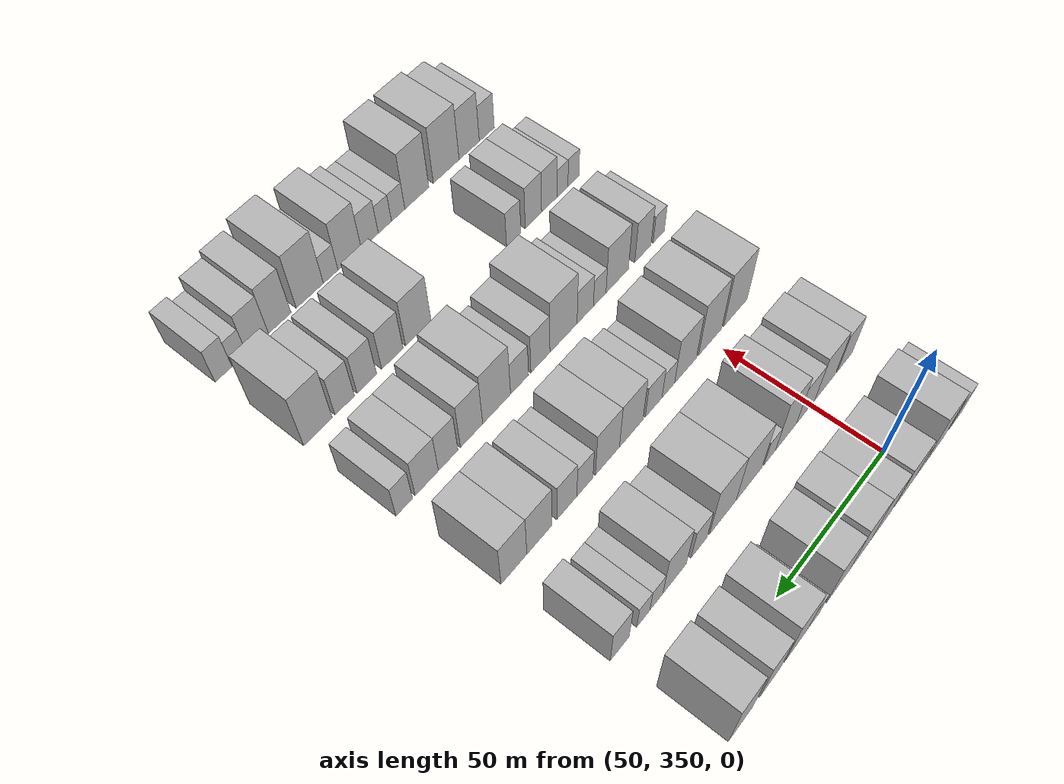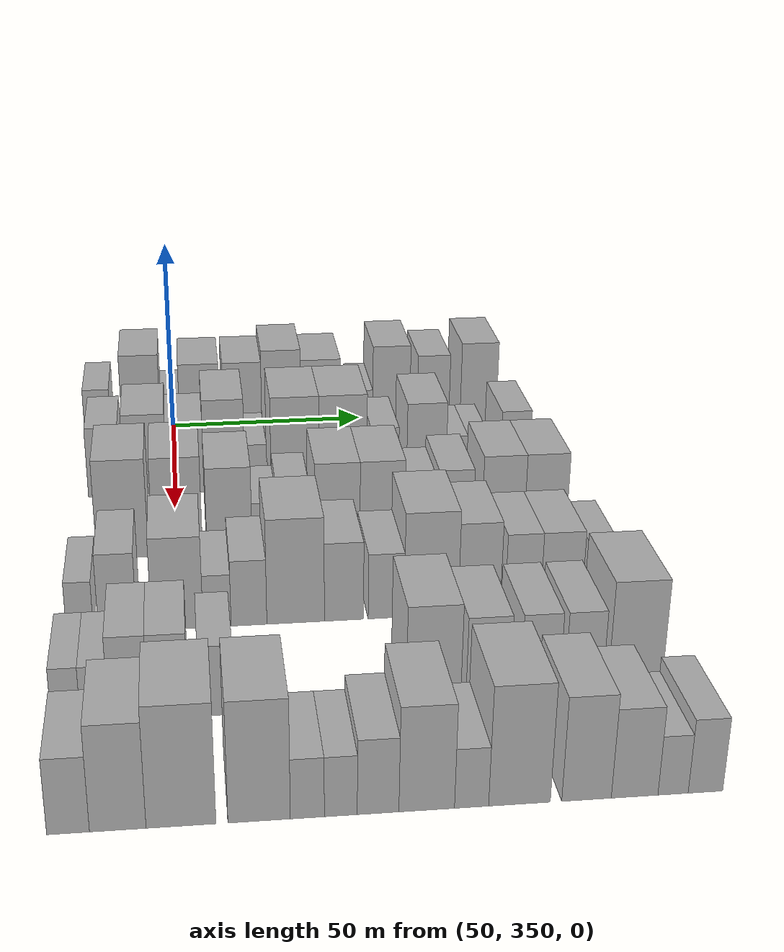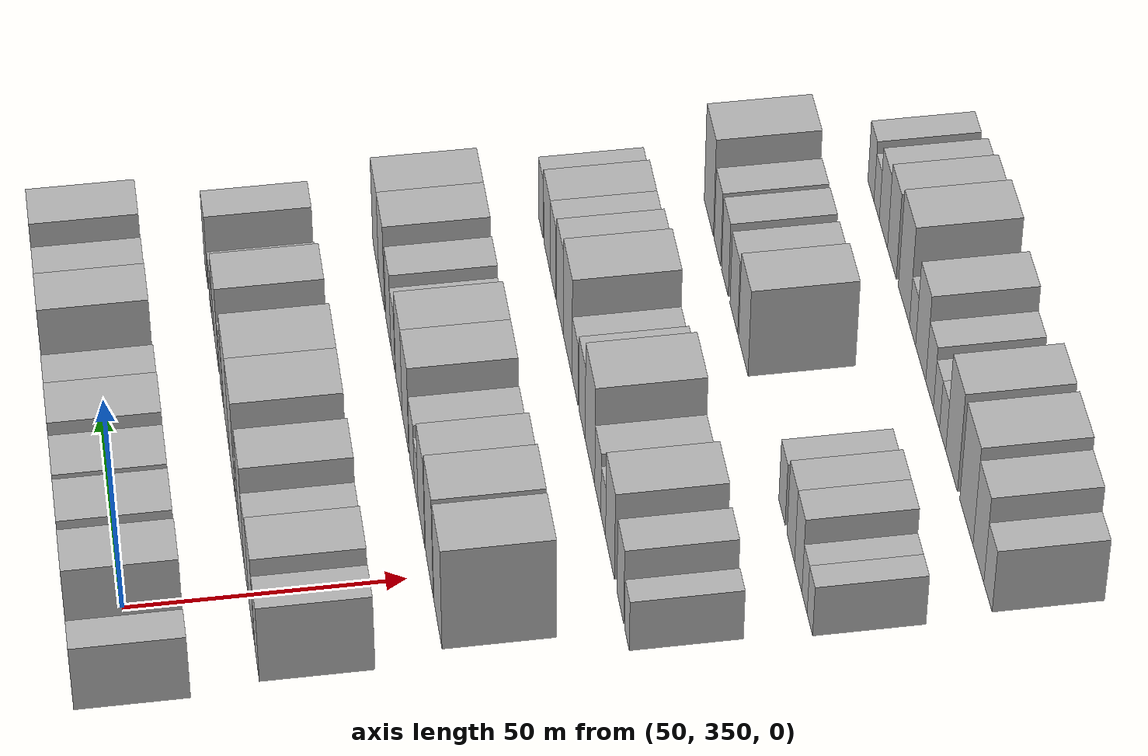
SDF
<sdf version="1.6">
 <world name="default">
  <model name="building_98">
   <static>1</static>
   <pose>50.0000 330.4746 0 0.000000 0.000000 0.000000</pose>
   <link name="link">
    <pose>0 0 7.50 0 0 0</pose>
    <collision name="collision"><geometry><box><size>20.0000 6.6870 15.0000</size></box></geometry></collision>
    <visual name="visual">
     <cast_shadows>0</cast_shadows>
     <geometry><box><size>20.0000 6.6870 15.0000</size></box></geometry>
     <material>
      <script>
       <uri>model://HANNAS_wall/materials/scripts</uri>
       <uri>model://HANNAS_wall/materials/textures</uri>
       <name>vrc/HANNAS_wall</name>
      </script>
     </material>
    </visual>
   </link>
  </model>
  <model name="building_99">
   <static>1</static>
   <pose>50.0000 341.7912 0 0.000000 0.000000 0.000000</pose>
   <link name="link">
    <pose>0 0 12.00 0 0 0</pose>
    <collision name="collision"><geometry><box><size>20.0000 9.9461 24.0000</size></box></geometry></collision>
    <visual name="visual">
     <cast_shadows>0</cast_shadows>
     <geometry><box><size>20.0000 9.9461 24.0000</size></box></geometry>
     <material>
      <script>
       <uri>model://HANNAS_wall/materials/scripts</uri>
       <uri>model://HANNAS_wall/materials/textures</uri>
       <name>vrc/HANNAS_wall</name>
      </script>
     </material>
    </visual>
   </link>
  </model>
  <model name="building_100">
   <static>1</static>
   <pose>50.0000 349.2575 0 0.000000 0.000000 0.000000</pose>
   <link name="link">
    <pose>0 0 6.00 0 0 0</pose>
    <collision name="collision"><geometry><box><size>20.0000 4.9865 12.0000</size></box></geometry></collision>
    <visual name="visual">
     <cast_shadows>0</cast_shadows>
     <geometry><box><size>20.0000 4.9865 12.0000</size></box></geometry>
     <material>
      <script>
       <uri>model://HANNAS_wall/materials/scripts</uri>
       <uri>model://HANNAS_wall/materials/textures</uri>
       <name>vrc/HANNAS_wall</name>
      </script>
     </material>
    </visual>
   </link>
  </model>
  <model name="building_101">
   <static>1</static>
   <pose>50.0000 356.9402 0 0.000000 0.000000 0.000000</pose>
   <link name="link">
    <pose>0 0 10.50 0 0 0</pose>
    <collision name="collision"><geometry><box><size>20.0000 10.3790 21.0000</size></box></geometry></collision>
    <visual name="visual">
     <cast_shadows>0</cast_shadows>
     <geometry><box><size>20.0000 10.3790 21.0000</size></box></geometry>
     <material>
      <script>
       <uri>model://HANNAS_wall/materials/scripts</uri>
       <uri>model://HANNAS_wall/materials/textures</uri>
       <name>vrc/HANNAS_wall</name>
      </script>
     </material>
    </visual>
   </link>
  </model>
  <model name="building_102">
   <static>1</static>
   <pose>50.0000 368.1233 0 0.000000 0.000000 0.000000</pose>
   <link name="link">
    <pose>0 0 10.50 0 0 0</pose>
    <collision name="collision"><geometry><box><size>20.0000 9.9872 21.0000</size></box></geometry></collision>
    <visual name="visual">
     <cast_shadows>0</cast_shadows>
     <geometry><box><size>20.0000 9.9872 21.0000</size></box></geometry>
     <material>
      <script>
       <uri>model://HANNAS_wall/materials/scripts</uri>
       <uri>model://HANNAS_wall/materials/textures</uri>
       <name>vrc/HANNAS_wall</name>
      </script>
     </material>
    </visual>
   </link>
  </model>
  <model name="building_103">
   <static>1</static>
   <pose>50.0000 378.2534 0 0.000000 0.000000 0.000000</pose>
   <link name="link">
    <pose>0 0 12.00 0 0 0</pose>
    <collision name="collision"><geometry><box><size>20.0000 10.2729 24.0000</size></box></geometry></collision>
    <visual name="visual">
     <cast_shadows>0</cast_shadows>
     <geometry><box><size>20.0000 10.2729 24.0000</size></box></geometry>
     <material>
      <script>
       <uri>model://HANNAS_wall/materials/scripts</uri>
       <uri>model://HANNAS_wall/materials/textures</uri>
       <name>vrc/HANNAS_wall</name>
      </script>
     </material>
    </visual>
   </link>
  </model>
  <model name="building_104">
   <static>1</static>
   <pose>50.0000 388.6050 0 0.000000 0.000000 0.000000</pose>
   <link name="link">
    <pose>0 0 10.50 0 0 0</pose>
    <collision name="collision"><geometry><box><size>20.0000 10.4304 21.0000</size></box></geometry></collision>
    <visual name="visual">
     <cast_shadows>0</cast_shadows>
     <geometry><box><size>20.0000 10.4304 21.0000</size></box></geometry>
     <material>
      <script>
       <uri>model://HANNAS_wall/materials/scripts</uri>
       <uri>model://HANNAS_wall/materials/textures</uri>
       <name>vrc/HANNAS_wall</name>
      </script>
     </material>
    </visual>
   </link>
  </model>
  <model name="building_105">
   <static>1</static>
   <pose>50.0000 399.5929 0 0.000000 0.000000 0.000000</pose>
   <link name="link">
    <pose>0 0 6.00 0 0 0</pose>
    <collision name="collision"><geometry><box><size>20.0000 5.5453 12.0000</size></box></geometry></collision>
    <visual name="visual">
     <cast_shadows>0</cast_shadows>
     <geometry><box><size>20.0000 5.5453 12.0000</size></box></geometry>
     <material>
      <script>
       <uri>model://HANNAS_wall/materials/scripts</uri>
       <uri>model://HANNAS_wall/materials/textures</uri>
       <name>vrc/HANNAS_wall</name>
      </script>
     </material>
    </visual>
   </link>
  </model>
  <model name="building_106">
   <static>1</static>
   <pose>50.0000 407.3061 0 0.000000 0.000000 0.000000</pose>
   <link name="link">
    <pose>0 0 12.00 0 0 0</pose>
    <collision name="collision"><geometry><box><size>20.0000 9.8811 24.0000</size></box></geometry></collision>
    <visual name="visual">
     <cast_shadows>0</cast_shadows>
     <geometry><box><size>20.0000 9.8811 24.0000</size></box></geometry>
     <material>
      <script>
       <uri>model://HANNAS_wall/materials/scripts</uri>
       <uri>model://HANNAS_wall/materials/textures</uri>
       <name>vrc/HANNAS_wall</name>
      </script>
     </material>
    </visual>
   </link>
  </model>
  <model name="building_107">
   <static>1</static>
   <pose>50.0000 418.5033 0 0.000000 0.000000 0.000000</pose>
   <link name="link">
    <pose>0 0 10.50 0 0 0</pose>
    <collision name="collision"><geometry><box><size>20.0000 8.5133 21.0000</size></box></geometry></collision>
    <visual name="visual">
     <cast_shadows>0</cast_shadows>
     <geometry><box><size>20.0000 8.5133 21.0000</size></box></geometry>
     <material>
      <script>
       <uri>model://HANNAS_wall/materials/scripts</uri>
       <uri>model://HANNAS_wall/materials/textures</uri>
       <name>vrc/HANNAS_wall</name>
      </script>
     </material>
    </visual>
   </link>
  </model>
  <model name="building_108">
   <static>1</static>
   <pose>50.0000 430.6282 0 0.000000 0.000000 0.000000</pose>
   <link name="link">
    <pose>0 0 12.00 0 0 0</pose>
    <collision name="collision"><geometry><box><size>20.0000 9.7366 24.0000</size></box></geometry></collision>
    <visual name="visual">
     <cast_shadows>0</cast_shadows>
     <geometry><box><size>20.0000 9.7366 24.0000</size></box></geometry>
     <material>
      <script>
       <uri>model://HANNAS_wall/materials/scripts</uri>
       <uri>model://HANNAS_wall/materials/textures</uri>
       <name>vrc/HANNAS_wall</name>
      </script>
     </material>
    </visual>
   </link>
  </model>
  <model name="building_225">
   <static>1</static>
   <pose>82.0000 333.1058 0 0.000000 0.000000 0.000000</pose>
   <link name="link">
    <pose>0 0 9.00 0 0 0</pose>
    <collision name="collision"><geometry><box><size>20.0000 7.6818 18.0000</size></box></geometry></collision>
    <visual name="visual">
     <cast_shadows>0</cast_shadows>
     <geometry><box><size>20.0000 7.6818 18.0000</size></box></geometry>
     <material>
      <script>
       <uri>model://HANNAS_wall/materials/scripts</uri>
       <uri>model://HANNAS_wall/materials/textures</uri>
       <name>vrc/HANNAS_wall</name>
      </script>
     </material>
    </visual>
   </link>
  </model>
  <model name="building_226">
   <static>1</static>
   <pose>82.0000 343.0905 0 0.000000 0.000000 0.000000</pose>
   <link name="link">
    <pose>0 0 10.50 0 0 0</pose>
    <collision name="collision"><geometry><box><size>20.0000 10.2875 21.0000</size></box></geometry></collision>
    <visual name="visual">
     <cast_shadows>0</cast_shadows>
     <geometry><box><size>20.0000 10.2875 21.0000</size></box></geometry>
     <material>
      <script>
       <uri>model://HANNAS_wall/materials/scripts</uri>
       <uri>model://HANNAS_wall/materials/textures</uri>
       <name>vrc/HANNAS_wall</name>
      </script>
     </material>
    </visual>
   </link>
  </model>
  <model name="building_227">
   <static>1</static>
   <pose>82.0000 352.7019 0 0.000000 0.000000 0.000000</pose>
   <link name="link">
    <pose>0 0 9.00 0 0 0</pose>
    <collision name="collision"><geometry><box><size>20.0000 8.9355 18.0000</size></box></geometry></collision>
    <visual name="visual">
     <cast_shadows>0</cast_shadows>
     <geometry><box><size>20.0000 8.9355 18.0000</size></box></geometry>
     <material>
      <script>
       <uri>model://HANNAS_wall/materials/scripts</uri>
       <uri>model://HANNAS_wall/materials/textures</uri>
       <name>vrc/HANNAS_wall</name>
      </script>
     </material>
    </visual>
   </link>
  </model>
  <model name="building_228">
   <static>1</static>
   <pose>82.0000 362.1231 0 0.000000 0.000000 0.000000</pose>
   <link name="link">
    <pose>0 0 12.00 0 0 0</pose>
    <collision name="collision"><geometry><box><size>20.0000 9.9068 24.0000</size></box></geometry></collision>
    <visual name="visual">
     <cast_shadows>0</cast_shadows>
     <geometry><box><size>20.0000 9.9068 24.0000</size></box></geometry>
     <material>
      <script>
       <uri>model://HANNAS_wall/materials/scripts</uri>
       <uri>model://HANNAS_wall/materials/textures</uri>
       <name>vrc/HANNAS_wall</name>
      </script>
     </material>
    </visual>
   </link>
  </model>
  <model name="building_229">
   <static>1</static>
   <pose>82.0000 369.7637 0 0.000000 0.000000 0.000000</pose>
   <link name="link">
    <pose>0 0 6.00 0 0 0</pose>
    <collision name="collision"><geometry><box><size>20.0000 5.3744 12.0000</size></box></geometry></collision>
    <visual name="visual">
     <cast_shadows>0</cast_shadows>
     <geometry><box><size>20.0000 5.3744 12.0000</size></box></geometry>
     <material>
      <script>
       <uri>model://HANNAS_wall/materials/scripts</uri>
       <uri>model://HANNAS_wall/materials/textures</uri>
       <name>vrc/HANNAS_wall</name>
      </script>
     </material>
    </visual>
   </link>
  </model>
  <model name="building_230">
   <static>1</static>
   <pose>82.0000 379.3302 0 0.000000 0.000000 0.000000</pose>
   <link name="link">
    <pose>0 0 12.00 0 0 0</pose>
    <collision name="collision"><geometry><box><size>20.0000 11.7587 24.0000</size></box></geometry></collision>
    <visual name="visual">
     <cast_shadows>0</cast_shadows>
     <geometry><box><size>20.0000 11.7587 24.0000</size></box></geometry>
     <material>
      <script>
       <uri>model://HANNAS_wall/materials/scripts</uri>
       <uri>model://HANNAS_wall/materials/textures</uri>
       <name>vrc/HANNAS_wall</name>
      </script>
     </material>
    </visual>
   </link>
  </model>
  <model name="building_231">
   <static>1</static>
   <pose>82.0000 391.0688 0 0.000000 0.000000 0.000000</pose>
   <link name="link">
    <pose>0 0 12.00 0 0 0</pose>
    <collision name="collision"><geometry><box><size>20.0000 11.7185 24.0000</size></box></geometry></collision>
    <visual name="visual">
     <cast_shadows>0</cast_shadows>
     <geometry><box><size>20.0000 11.7185 24.0000</size></box></geometry>
     <material>
      <script>
       <uri>model://HANNAS_wall/materials/scripts</uri>
       <uri>model://HANNAS_wall/materials/textures</uri>
       <name>vrc/HANNAS_wall</name>
      </script>
     </material>
    </visual>
   </link>
  </model>
  <model name="building_232">
   <static>1</static>
   <pose>82.0000 401.3476 0 0.000000 0.000000 0.000000</pose>
   <link name="link">
    <pose>0 0 7.50 0 0 0</pose>
    <collision name="collision"><geometry><box><size>20.0000 6.8390 15.0000</size></box></geometry></collision>
    <visual name="visual">
     <cast_shadows>0</cast_shadows>
     <geometry><box><size>20.0000 6.8390 15.0000</size></box></geometry>
     <material>
      <script>
       <uri>model://HANNAS_wall/materials/scripts</uri>
       <uri>model://HANNAS_wall/materials/textures</uri>
       <name>vrc/HANNAS_wall</name>
      </script>
     </material>
    </visual>
   </link>
  </model>
  <model name="building_233">
   <static>1</static>
   <pose>82.0000 411.6606 0 0.000000 0.000000 0.000000</pose>
   <link name="link">
    <pose>0 0 10.50 0 0 0</pose>
    <collision name="collision"><geometry><box><size>20.0000 9.7869 21.0000</size></box></geometry></collision>
    <visual name="visual">
     <cast_shadows>0</cast_shadows>
     <geometry><box><size>20.0000 9.7869 21.0000</size></box></geometry>
     <material>
      <script>
       <uri>model://HANNAS_wall/materials/scripts</uri>
       <uri>model://HANNAS_wall/materials/textures</uri>
       <name>vrc/HANNAS_wall</name>
      </script>
     </material>
    </visual>
   </link>
  </model>
  <model name="building_234">
   <static>1</static>
   <pose>82.0000 419.1915 0 0.000000 0.000000 0.000000</pose>
   <link name="link">
    <pose>0 0 6.00 0 0 0</pose>
    <collision name="collision"><geometry><box><size>20.0000 5.2749 12.0000</size></box></geometry></collision>
    <visual name="visual">
     <cast_shadows>0</cast_shadows>
     <geometry><box><size>20.0000 5.2749 12.0000</size></box></geometry>
     <material>
      <script>
       <uri>model://HANNAS_wall/materials/scripts</uri>
       <uri>model://HANNAS_wall/materials/textures</uri>
       <name>vrc/HANNAS_wall</name>
      </script>
     </material>
    </visual>
   </link>
  </model>
  <model name="building_235">
   <static>1</static>
   <pose>82.0000 424.4443 0 0.000000 0.000000 0.000000</pose>
   <link name="link">
    <pose>0 0 6.00 0 0 0</pose>
    <collision name="collision"><geometry><box><size>20.0000 5.2309 12.0000</size></box></geometry></collision>
    <visual name="visual">
     <cast_shadows>0</cast_shadows>
     <geometry><box><size>20.0000 5.2309 12.0000</size></box></geometry>
     <material>
      <script>
       <uri>model://HANNAS_wall/materials/scripts</uri>
       <uri>model://HANNAS_wall/materials/textures</uri>
       <name>vrc/HANNAS_wall</name>
      </script>
     </material>
    </visual>
   </link>
  </model>
  <model name="building_236">
   <static>1</static>
   <pose>82.0000 433.7521 0 0.000000 0.000000 0.000000</pose>
   <link name="link">
    <pose>0 0 9.00 0 0 0</pose>
    <collision name="collision"><geometry><box><size>20.0000 7.3846 18.0000</size></box></geometry></collision>
    <visual name="visual">
     <cast_shadows>0</cast_shadows>
     <geometry><box><size>20.0000 7.3846 18.0000</size></box></geometry>
     <material>
      <script>
       <uri>model://HANNAS_wall/materials/scripts</uri>
       <uri>model://HANNAS_wall/materials/textures</uri>
       <name>vrc/HANNAS_wall</name>
      </script>
     </material>
    </visual>
   </link>
  </model>
  <model name="building_343">
   <static>1</static>
   <pose>114.0000 338.1973 0 0.000000 0.000000 0.000000</pose>
   <link name="link">
    <pose>0 0 12.00 0 0 0</pose>
    <collision name="collision"><geometry><box><size>20.0000 11.4743 24.0000</size></box></geometry></collision>
    <visual name="visual">
     <cast_shadows>0</cast_shadows>
     <geometry><box><size>20.0000 11.4743 24.0000</size></box></geometry>
     <material>
      <script>
       <uri>model://HANNAS_wall/materials/scripts</uri>
       <uri>model://HANNAS_wall/materials/textures</uri>
       <name>vrc/HANNAS_wall</name>
      </script>
     </material>
    </visual>
   </link>
  </model>
  <model name="building_344">
   <static>1</static>
   <pose>114.0000 350.4696 0 0.000000 0.000000 0.000000</pose>
   <link name="link">
    <pose>0 0 12.00 0 0 0</pose>
    <collision name="collision"><geometry><box><size>20.0000 11.0702 24.0000</size></box></geometry></collision>
    <visual name="visual">
     <cast_shadows>0</cast_shadows>
     <geometry><box><size>20.0000 11.0702 24.0000</size></box></geometry>
     <material>
      <script>
       <uri>model://HANNAS_wall/materials/scripts</uri>
       <uri>model://HANNAS_wall/materials/textures</uri>
       <name>vrc/HANNAS_wall</name>
      </script>
     </material>
    </visual>
   </link>
  </model>
  <model name="building_345">
   <static>1</static>
   <pose>114.0000 362.0540 0 0.000000 0.000000 0.000000</pose>
   <link name="link">
    <pose>0 0 10.50 0 0 0</pose>
    <collision name="collision"><geometry><box><size>20.0000 10.0987 21.0000</size></box></geometry></collision>
    <visual name="visual">
     <cast_shadows>0</cast_shadows>
     <geometry><box><size>20.0000 10.0987 21.0000</size></box></geometry>
     <material>
      <script>
       <uri>model://HANNAS_wall/materials/scripts</uri>
       <uri>model://HANNAS_wall/materials/textures</uri>
       <name>vrc/HANNAS_wall</name>
      </script>
     </material>
    </visual>
   </link>
  </model>
  <model name="building_346">
   <static>1</static>
   <pose>114.0000 369.9649 0 0.000000 0.000000 0.000000</pose>
   <link name="link">
    <pose>0 0 6.00 0 0 0</pose>
    <collision name="collision"><geometry><box><size>20.0000 5.7232 12.0000</size></box></geometry></collision>
    <visual name="visual">
     <cast_shadows>0</cast_shadows>
     <geometry><box><size>20.0000 5.7232 12.0000</size></box></geometry>
     <material>
      <script>
       <uri>model://HANNAS_wall/materials/scripts</uri>
       <uri>model://HANNAS_wall/materials/textures</uri>
       <name>vrc/HANNAS_wall</name>
      </script>
     </material>
    </visual>
   </link>
  </model>
  <model name="building_347">
   <static>1</static>
   <pose>114.0000 376.5348 0 0.000000 0.000000 0.000000</pose>
   <link name="link">
    <pose>0 0 7.50 0 0 0</pose>
    <collision name="collision"><geometry><box><size>20.0000 7.4166 15.0000</size></box></geometry></collision>
    <visual name="visual">
     <cast_shadows>0</cast_shadows>
     <geometry><box><size>20.0000 7.4166 15.0000</size></box></geometry>
     <material>
      <script>
       <uri>model://HANNAS_wall/materials/scripts</uri>
       <uri>model://HANNAS_wall/materials/textures</uri>
       <name>vrc/HANNAS_wall</name>
      </script>
     </material>
    </visual>
   </link>
  </model>
  <model name="building_348">
   <static>1</static>
   <pose>114.0000 386.3500 0 0.000000 0.000000 0.000000</pose>
   <link name="link">
    <pose>0 0 10.50 0 0 0</pose>
    <collision name="collision"><geometry><box><size>20.0000 10.2137 21.0000</size></box></geometry></collision>
    <visual name="visual">
     <cast_shadows>0</cast_shadows>
     <geometry><box><size>20.0000 10.2137 21.0000</size></box></geometry>
     <material>
      <script>
       <uri>model://HANNAS_wall/materials/scripts</uri>
       <uri>model://HANNAS_wall/materials/textures</uri>
       <name>vrc/HANNAS_wall</name>
      </script>
     </material>
    </visual>
   </link>
  </model>
  <model name="building_349">
   <static>1</static>
   <pose>114.0000 396.5554 0 0.000000 0.000000 0.000000</pose>
   <link name="link">
    <pose>0 0 10.50 0 0 0</pose>
    <collision name="collision"><geometry><box><size>20.0000 10.1972 21.0000</size></box></geometry></collision>
    <visual name="visual">
     <cast_shadows>0</cast_shadows>
     <geometry><box><size>20.0000 10.1972 21.0000</size></box></geometry>
     <material>
      <script>
       <uri>model://HANNAS_wall/materials/scripts</uri>
       <uri>model://HANNAS_wall/materials/textures</uri>
       <name>vrc/HANNAS_wall</name>
      </script>
     </material>
    </visual>
   </link>
  </model>
  <model name="building_350">
   <static>1</static>
   <pose>114.0000 405.9857 0 0.000000 0.000000 0.000000</pose>
   <link name="link">
    <pose>0 0 7.50 0 0 0</pose>
    <collision name="collision"><geometry><box><size>20.0000 6.6634 15.0000</size></box></geometry></collision>
    <visual name="visual">
     <cast_shadows>0</cast_shadows>
     <geometry><box><size>20.0000 6.6634 15.0000</size></box></geometry>
     <material>
      <script>
       <uri>model://HANNAS_wall/materials/scripts</uri>
       <uri>model://HANNAS_wall/materials/textures</uri>
       <name>vrc/HANNAS_wall</name>
      </script>
     </material>
    </visual>
   </link>
  </model>
  <model name="building_351">
   <static>1</static>
   <pose>114.0000 413.3184 0 0.000000 0.000000 0.000000</pose>
   <link name="link">
    <pose>0 0 9.00 0 0 0</pose>
    <collision name="collision"><geometry><box><size>20.0000 8.0021 18.0000</size></box></geometry></collision>
    <visual name="visual">
     <cast_shadows>0</cast_shadows>
     <geometry><box><size>20.0000 8.0021 18.0000</size></box></geometry>
     <material>
      <script>
       <uri>model://HANNAS_wall/materials/scripts</uri>
       <uri>model://HANNAS_wall/materials/textures</uri>
       <name>vrc/HANNAS_wall</name>
      </script>
     </material>
    </visual>
   </link>
  </model>
  <model name="building_352">
   <static>1</static>
   <pose>114.0000 424.2361 0 0.000000 0.000000 0.000000</pose>
   <link name="link">
    <pose>0 0 10.50 0 0 0</pose>
    <collision name="collision"><geometry><box><size>20.0000 9.8334 21.0000</size></box></geometry></collision>
    <visual name="visual">
     <cast_shadows>0</cast_shadows>
     <geometry><box><size>20.0000 9.8334 21.0000</size></box></geometry>
     <material>
      <script>
       <uri>model://HANNAS_wall/materials/scripts</uri>
       <uri>model://HANNAS_wall/materials/textures</uri>
       <name>vrc/HANNAS_wall</name>
      </script>
     </material>
    </visual>
   </link>
  </model>
  <model name="building_353">
   <static>1</static>
   <pose>114.0000 434.0632 0 0.000000 0.000000 0.000000</pose>
   <link name="link">
    <pose>0 0 10.50 0 0 0</pose>
    <collision name="collision"><geometry><box><size>20.0000 9.8206 21.0000</size></box></geometry></collision>
    <visual name="visual">
     <cast_shadows>0</cast_shadows>
     <geometry><box><size>20.0000 9.8206 21.0000</size></box></geometry>
     <material>
      <script>
       <uri>model://HANNAS_wall/materials/scripts</uri>
       <uri>model://HANNAS_wall/materials/textures</uri>
       <name>vrc/HANNAS_wall</name>
      </script>
     </material>
    </visual>
   </link>
  </model>
  <model name="building_466">
   <static>1</static>
   <pose>146.0000 330.3055 0 0.000000 0.000000 0.000000</pose>
   <link name="link">
    <pose>0 0 6.00 0 0 0</pose>
    <collision name="collision"><geometry><box><size>20.0000 5.4530 12.0000</size></box></geometry></collision>
    <visual name="visual">
     <cast_shadows>0</cast_shadows>
     <geometry><box><size>20.0000 5.4530 12.0000</size></box></geometry>
     <material>
      <script>
       <uri>model://HANNAS_wall/materials/scripts</uri>
       <uri>model://HANNAS_wall/materials/textures</uri>
       <name>vrc/HANNAS_wall</name>
      </script>
     </material>
    </visual>
   </link>
  </model>
  <model name="building_467">
   <static>1</static>
   <pose>146.0000 337.9289 0 0.000000 0.000000 0.000000</pose>
   <link name="link">
    <pose>0 0 9.00 0 0 0</pose>
    <collision name="collision"><geometry><box><size>20.0000 7.7937 18.0000</size></box></geometry></collision>
    <visual name="visual">
     <cast_shadows>0</cast_shadows>
     <geometry><box><size>20.0000 7.7937 18.0000</size></box></geometry>
     <material>
      <script>
       <uri>model://HANNAS_wall/materials/scripts</uri>
       <uri>model://HANNAS_wall/materials/textures</uri>
       <name>vrc/HANNAS_wall</name>
      </script>
     </material>
    </visual>
   </link>
  </model>
  <model name="building_468">
   <static>1</static>
   <pose>146.0000 350.0707 0 0.000000 0.000000 0.000000</pose>
   <link name="link">
    <pose>0 0 10.50 0 0 0</pose>
    <collision name="collision"><geometry><box><size>20.0000 10.4899 21.0000</size></box></geometry></collision>
    <visual name="visual">
     <cast_shadows>0</cast_shadows>
     <geometry><box><size>20.0000 10.4899 21.0000</size></box></geometry>
     <material>
      <script>
       <uri>model://HANNAS_wall/materials/scripts</uri>
       <uri>model://HANNAS_wall/materials/textures</uri>
       <name>vrc/HANNAS_wall</name>
      </script>
     </material>
    </visual>
   </link>
  </model>
  <model name="building_469">
   <static>1</static>
   <pose>146.0000 358.1819 0 0.000000 0.000000 0.000000</pose>
   <link name="link">
    <pose>0 0 6.00 0 0 0</pose>
    <collision name="collision"><geometry><box><size>20.0000 5.7324 12.0000</size></box></geometry></collision>
    <visual name="visual">
     <cast_shadows>0</cast_shadows>
     <geometry><box><size>20.0000 5.7324 12.0000</size></box></geometry>
     <material>
      <script>
       <uri>model://HANNAS_wall/materials/scripts</uri>
       <uri>model://HANNAS_wall/materials/textures</uri>
       <name>vrc/HANNAS_wall</name>
      </script>
     </material>
    </visual>
   </link>
  </model>
  <model name="building_470">
   <static>1</static>
   <pose>146.0000 364.7214 0 0.000000 0.000000 0.000000</pose>
   <link name="link">
    <pose>0 0 7.50 0 0 0</pose>
    <collision name="collision"><geometry><box><size>20.0000 7.3466 15.0000</size></box></geometry></collision>
    <visual name="visual">
     <cast_shadows>0</cast_shadows>
     <geometry><box><size>20.0000 7.3466 15.0000</size></box></geometry>
     <material>
      <script>
       <uri>model://HANNAS_wall/materials/scripts</uri>
       <uri>model://HANNAS_wall/materials/textures</uri>
       <name>vrc/HANNAS_wall</name>
      </script>
     </material>
    </visual>
   </link>
  </model>
  <model name="building_471">
   <static>1</static>
   <pose>146.0000 374.3463 0 0.000000 0.000000 0.000000</pose>
   <link name="link">
    <pose>0 0 12.00 0 0 0</pose>
    <collision name="collision"><geometry><box><size>20.0000 11.9031 24.0000</size></box></geometry></collision>
    <visual name="visual">
     <cast_shadows>0</cast_shadows>
     <geometry><box><size>20.0000 11.9031 24.0000</size></box></geometry>
     <material>
      <script>
       <uri>model://HANNAS_wall/materials/scripts</uri>
       <uri>model://HANNAS_wall/materials/textures</uri>
       <name>vrc/HANNAS_wall</name>
      </script>
     </material>
    </visual>
   </link>
  </model>
  <model name="building_472">
   <static>1</static>
   <pose>146.0000 384.3605 0 0.000000 0.000000 0.000000</pose>
   <link name="link">
    <pose>0 0 9.00 0 0 0</pose>
    <collision name="collision"><geometry><box><size>20.0000 8.1253 18.0000</size></box></geometry></collision>
    <visual name="visual">
     <cast_shadows>0</cast_shadows>
     <geometry><box><size>20.0000 8.1253 18.0000</size></box></geometry>
     <material>
      <script>
       <uri>model://HANNAS_wall/materials/scripts</uri>
       <uri>model://HANNAS_wall/materials/textures</uri>
       <name>vrc/HANNAS_wall</name>
      </script>
     </material>
    </visual>
   </link>
  </model>
  <model name="building_473">
   <static>1</static>
   <pose>146.0000 393.1684 0 0.000000 0.000000 0.000000</pose>
   <link name="link">
    <pose>0 0 7.50 0 0 0</pose>
    <collision name="collision"><geometry><box><size>20.0000 7.4905 15.0000</size></box></geometry></collision>
    <visual name="visual">
     <cast_shadows>0</cast_shadows>
     <geometry><box><size>20.0000 7.4905 15.0000</size></box></geometry>
     <material>
      <script>
       <uri>model://HANNAS_wall/materials/scripts</uri>
       <uri>model://HANNAS_wall/materials/textures</uri>
       <name>vrc/HANNAS_wall</name>
      </script>
     </material>
    </visual>
   </link>
  </model>
  <model name="building_474">
   <static>1</static>
   <pose>146.0000 402.5946 0 0.000000 0.000000 0.000000</pose>
   <link name="link">
    <pose>0 0 12.00 0 0 0</pose>
    <collision name="collision"><geometry><box><size>20.0000 11.3618 24.0000</size></box></geometry></collision>
    <visual name="visual">
     <cast_shadows>0</cast_shadows>
     <geometry><box><size>20.0000 11.3618 24.0000</size></box></geometry>
     <material>
      <script>
       <uri>model://HANNAS_wall/materials/scripts</uri>
       <uri>model://HANNAS_wall/materials/textures</uri>
       <name>vrc/HANNAS_wall</name>
      </script>
     </material>
    </visual>
   </link>
  </model>
  <model name="building_475">
   <static>1</static>
   <pose>146.0000 412.7109 0 0.000000 0.000000 0.000000</pose>
   <link name="link">
    <pose>0 0 10.50 0 0 0</pose>
    <collision name="collision"><geometry><box><size>20.0000 8.8710 21.0000</size></box></geometry></collision>
    <visual name="visual">
     <cast_shadows>0</cast_shadows>
     <geometry><box><size>20.0000 8.8710 21.0000</size></box></geometry>
     <material>
      <script>
       <uri>model://HANNAS_wall/materials/scripts</uri>
       <uri>model://HANNAS_wall/materials/textures</uri>
       <name>vrc/HANNAS_wall</name>
      </script>
     </material>
    </visual>
   </link>
  </model>
  <model name="building_476">
   <static>1</static>
   <pose>146.0000 421.9189 0 0.000000 0.000000 0.000000</pose>
   <link name="link">
    <pose>0 0 9.00 0 0 0</pose>
    <collision name="collision"><geometry><box><size>20.0000 7.5449 18.0000</size></box></geometry></collision>
    <visual name="visual">
     <cast_shadows>0</cast_shadows>
     <geometry><box><size>20.0000 7.5449 18.0000</size></box></geometry>
     <material>
      <script>
       <uri>model://HANNAS_wall/materials/scripts</uri>
       <uri>model://HANNAS_wall/materials/textures</uri>
       <name>vrc/HANNAS_wall</name>
      </script>
     </material>
    </visual>
   </link>
  </model>
  <model name="building_477">
   <static>1</static>
   <pose>146.0000 430.1117 0 0.000000 0.000000 0.000000</pose>
   <link name="link">
    <pose>0 0 9.00 0 0 0</pose>
    <collision name="collision"><geometry><box><size>20.0000 8.8408 18.0000</size></box></geometry></collision>
    <visual name="visual">
     <cast_shadows>0</cast_shadows>
     <geometry><box><size>20.0000 8.8408 18.0000</size></box></geometry>
     <material>
      <script>
       <uri>model://HANNAS_wall/materials/scripts</uri>
       <uri>model://HANNAS_wall/materials/textures</uri>
       <name>vrc/HANNAS_wall</name>
      </script>
     </material>
    </visual>
   </link>
  </model>
  <model name="building_478">
   <static>1</static>
   <pose>146.0000 438.6049 0 0.000000 0.000000 0.000000</pose>
   <link name="link">
    <pose>0 0 7.50 0 0 0</pose>
    <collision name="collision"><geometry><box><size>20.0000 6.1456 15.0000</size></box></geometry></collision>
    <visual name="visual">
     <cast_shadows>0</cast_shadows>
     <geometry><box><size>20.0000 6.1456 15.0000</size></box></geometry>
     <material>
      <script>
       <uri>model://HANNAS_wall/materials/scripts</uri>
       <uri>model://HANNAS_wall/materials/textures</uri>
       <name>vrc/HANNAS_wall</name>
      </script>
     </material>
    </visual>
   </link>
  </model>
  <model name="building_580">
   <static>1</static>
   <pose>178.0000 329.2669 0 0.000000 0.000000 0.000000</pose>
   <link name="link">
    <pose>0 0 6.00 0 0 0</pose>
    <collision name="collision"><geometry><box><size>20.0000 5.3122 12.0000</size></box></geometry></collision>
    <visual name="visual">
     <cast_shadows>0</cast_shadows>
     <geometry><box><size>20.0000 5.3122 12.0000</size></box></geometry>
     <material>
      <script>
       <uri>model://HANNAS_wall/materials/scripts</uri>
       <uri>model://HANNAS_wall/materials/textures</uri>
       <name>vrc/HANNAS_wall</name>
      </script>
     </material>
    </visual>
   </link>
  </model>
  <model name="building_581">
   <static>1</static>
   <pose>178.0000 334.5004 0 0.000000 0.000000 0.000000</pose>
   <link name="link">
    <pose>0 0 6.00 0 0 0</pose>
    <collision name="collision"><geometry><box><size>20.0000 5.1548 12.0000</size></box></geometry></collision>
    <visual name="visual">
     <cast_shadows>0</cast_shadows>
     <geometry><box><size>20.0000 5.1548 12.0000</size></box></geometry>
     <material>
      <script>
       <uri>model://HANNAS_wall/materials/scripts</uri>
       <uri>model://HANNAS_wall/materials/textures</uri>
       <name>vrc/HANNAS_wall</name>
      </script>
     </material>
    </visual>
   </link>
  </model>
  <model name="building_582">
   <static>1</static>
   <pose>178.0000 340.7263 0 0.000000 0.000000 0.000000</pose>
   <link name="link">
    <pose>0 0 9.00 0 0 0</pose>
    <collision name="collision"><geometry><box><size>20.0000 7.2969 18.0000</size></box></geometry></collision>
    <visual name="visual">
     <cast_shadows>0</cast_shadows>
     <geometry><box><size>20.0000 7.2969 18.0000</size></box></geometry>
     <material>
      <script>
       <uri>model://HANNAS_wall/materials/scripts</uri>
       <uri>model://HANNAS_wall/materials/textures</uri>
       <name>vrc/HANNAS_wall</name>
      </script>
     </material>
    </visual>
   </link>
  </model>
  <model name="building_583">
   <static>1</static>
   <pose>178.0000 348.1145 0 0.000000 0.000000 0.000000</pose>
   <link name="link">
    <pose>0 0 9.00 0 0 0</pose>
    <collision name="collision"><geometry><box><size>20.0000 7.4796 18.0000</size></box></geometry></collision>
    <visual name="visual">
     <cast_shadows>0</cast_shadows>
     <geometry><box><size>20.0000 7.4796 18.0000</size></box></geometry>
     <material>
      <script>
       <uri>model://HANNAS_wall/materials/scripts</uri>
       <uri>model://HANNAS_wall/materials/textures</uri>
       <name>vrc/HANNAS_wall</name>
      </script>
     </material>
    </visual>
   </link>
  </model>
  <model name="building_584">
   <static>1</static>
   <pose>178.0000 357.0624 0 0.000000 0.000000 0.000000</pose>
   <link name="link">
    <pose>0 0 7.50 0 0 0</pose>
    <collision name="collision"><geometry><box><size>20.0000 6.4161 15.0000</size></box></geometry></collision>
    <visual name="visual">
     <cast_shadows>0</cast_shadows>
     <geometry><box><size>20.0000 6.4161 15.0000</size></box></geometry>
     <material>
      <script>
       <uri>model://HANNAS_wall/materials/scripts</uri>
       <uri>model://HANNAS_wall/materials/textures</uri>
       <name>vrc/HANNAS_wall</name>
      </script>
     </material>
    </visual>
   </link>
  </model>
  <model name="building_585">
   <static>1</static>
   <pose>178.0000 397.8892 0 0.000000 0.000000 0.000000</pose>
   <link name="link">
    <pose>0 0 10.50 0 0 0</pose>
    <collision name="collision"><geometry><box><size>20.0000 10.4125 21.0000</size></box></geometry></collision>
    <visual name="visual">
     <cast_shadows>0</cast_shadows>
     <geometry><box><size>20.0000 10.4125 21.0000</size></box></geometry>
     <material>
      <script>
       <uri>model://HANNAS_wall/materials/scripts</uri>
       <uri>model://HANNAS_wall/materials/textures</uri>
       <name>vrc/HANNAS_wall</name>
      </script>
     </material>
    </visual>
   </link>
  </model>
  <model name="building_586">
   <static>1</static>
   <pose>178.0000 408.3199 0 0.000000 0.000000 0.000000</pose>
   <link name="link">
    <pose>0 0 9.00 0 0 0</pose>
    <collision name="collision"><geometry><box><size>20.0000 8.4489 18.0000</size></box></geometry></collision>
    <visual name="visual">
     <cast_shadows>0</cast_shadows>
     <geometry><box><size>20.0000 8.4489 18.0000</size></box></geometry>
     <material>
      <script>
       <uri>model://HANNAS_wall/materials/scripts</uri>
       <uri>model://HANNAS_wall/materials/textures</uri>
       <name>vrc/HANNAS_wall</name>
      </script>
     </material>
    </visual>
   </link>
  </model>
  <model name="building_587">
   <static>1</static>
   <pose>178.0000 418.3214 0 0.000000 0.000000 0.000000</pose>
   <link name="link">
    <pose>0 0 9.00 0 0 0</pose>
    <collision name="collision"><geometry><box><size>20.0000 7.5541 18.0000</size></box></geometry></collision>
    <visual name="visual">
     <cast_shadows>0</cast_shadows>
     <geometry><box><size>20.0000 7.5541 18.0000</size></box></geometry>
     <material>
      <script>
       <uri>model://HANNAS_wall/materials/scripts</uri>
       <uri>model://HANNAS_wall/materials/textures</uri>
       <name>vrc/HANNAS_wall</name>
      </script>
     </material>
    </visual>
   </link>
  </model>
  <model name="building_588">
   <static>1</static>
   <pose>178.0000 426.7856 0 0.000000 0.000000 0.000000</pose>
   <link name="link">
    <pose>0 0 9.00 0 0 0</pose>
    <collision name="collision"><geometry><box><size>20.0000 7.3743 18.0000</size></box></geometry></collision>
    <visual name="visual">
     <cast_shadows>0</cast_shadows>
     <geometry><box><size>20.0000 7.3743 18.0000</size></box></geometry>
     <material>
      <script>
       <uri>model://HANNAS_wall/materials/scripts</uri>
       <uri>model://HANNAS_wall/materials/textures</uri>
       <name>vrc/HANNAS_wall</name>
      </script>
     </material>
    </visual>
   </link>
  </model>
  <model name="building_589">
   <static>1</static>
   <pose>178.0000 436.7634 0 0.000000 0.000000 0.000000</pose>
   <link name="link">
    <pose>0 0 12.00 0 0 0</pose>
    <collision name="collision"><geometry><box><size>20.0000 10.5814 24.0000</size></box></geometry></collision>
    <visual name="visual">
     <cast_shadows>0</cast_shadows>
     <geometry><box><size>20.0000 10.5814 24.0000</size></box></geometry>
     <material>
      <script>
       <uri>model://HANNAS_wall/materials/scripts</uri>
       <uri>model://HANNAS_wall/materials/textures</uri>
       <name>vrc/HANNAS_wall</name>
      </script>
     </material>
    </visual>
   </link>
  </model>
  <model name="building_693">
   <static>1</static>
   <pose>210.0000 331.3849 0 0.000000 0.000000 0.000000</pose>
   <link name="link">
    <pose>0 0 7.50 0 0 0</pose>
    <collision name="collision"><geometry><box><size>20.0000 7.0261 15.0000</size></box></geometry></collision>
    <visual name="visual">
     <cast_shadows>0</cast_shadows>
     <geometry><box><size>20.0000 7.0261 15.0000</size></box></geometry>
     <material>
      <script>
       <uri>model://HANNAS_wall/materials/scripts</uri>
       <uri>model://HANNAS_wall/materials/textures</uri>
       <name>vrc/HANNAS_wall</name>
      </script>
     </material>
    </visual>
   </link>
  </model>
  <model name="building_694">
   <static>1</static>
   <pose>210.0000 339.5705 0 0.000000 0.000000 0.000000</pose>
   <link name="link">
    <pose>0 0 10.50 0 0 0</pose>
    <collision name="collision"><geometry><box><size>20.0000 9.3451 21.0000</size></box></geometry></collision>
    <visual name="visual">
     <cast_shadows>0</cast_shadows>
     <geometry><box><size>20.0000 9.3451 21.0000</size></box></geometry>
     <material>
      <script>
       <uri>model://HANNAS_wall/materials/scripts</uri>
       <uri>model://HANNAS_wall/materials/textures</uri>
       <name>vrc/HANNAS_wall</name>
      </script>
     </material>
    </visual>
   </link>
  </model>
  <model name="building_695">
   <static>1</static>
   <pose>210.0000 350.0581 0 0.000000 0.000000 0.000000</pose>
   <link name="link">
    <pose>0 0 12.00 0 0 0</pose>
    <collision name="collision"><geometry><box><size>20.0000 11.6300 24.0000</size></box></geometry></collision>
    <visual name="visual">
     <cast_shadows>0</cast_shadows>
     <geometry><box><size>20.0000 11.6300 24.0000</size></box></geometry>
     <material>
      <script>
       <uri>model://HANNAS_wall/materials/scripts</uri>
       <uri>model://HANNAS_wall/materials/textures</uri>
       <name>vrc/HANNAS_wall</name>
      </script>
     </material>
    </visual>
   </link>
  </model>
  <model name="building_696">
   <static>1</static>
   <pose>210.0000 363.1144 0 0.000000 0.000000 0.000000</pose>
   <link name="link">
    <pose>0 0 12.00 0 0 0</pose>
    <collision name="collision"><geometry><box><size>20.0000 10.4827 24.0000</size></box></geometry></collision>
    <visual name="visual">
     <cast_shadows>0</cast_shadows>
     <geometry><box><size>20.0000 10.4827 24.0000</size></box></geometry>
     <material>
      <script>
       <uri>model://HANNAS_wall/materials/scripts</uri>
       <uri>model://HANNAS_wall/materials/textures</uri>
       <name>vrc/HANNAS_wall</name>
      </script>
     </material>
    </visual>
   </link>
  </model>
  <model name="building_697">
   <static>1</static>
   <pose>210.0000 371.2270 0 0.000000 0.000000 0.000000</pose>
   <link name="link">
    <pose>0 0 6.00 0 0 0</pose>
    <collision name="collision"><geometry><box><size>20.0000 5.7424 12.0000</size></box></geometry></collision>
    <visual name="visual">
     <cast_shadows>0</cast_shadows>
     <geometry><box><size>20.0000 5.7424 12.0000</size></box></geometry>
     <material>
      <script>
       <uri>model://HANNAS_wall/materials/scripts</uri>
       <uri>model://HANNAS_wall/materials/textures</uri>
       <name>vrc/HANNAS_wall</name>
      </script>
     </material>
    </visual>
   </link>
  </model>
  <model name="building_698">
   <static>1</static>
   <pose>210.0000 376.8894 0 0.000000 0.000000 0.000000</pose>
   <link name="link">
    <pose>0 0 6.00 0 0 0</pose>
    <collision name="collision"><geometry><box><size>20.0000 5.5824 12.0000</size></box></geometry></collision>
    <visual name="visual">
     <cast_shadows>0</cast_shadows>
     <geometry><box><size>20.0000 5.5824 12.0000</size></box></geometry>
     <material>
      <script>
       <uri>model://HANNAS_wall/materials/scripts</uri>
       <uri>model://HANNAS_wall/materials/textures</uri>
       <name>vrc/HANNAS_wall</name>
      </script>
     </material>
    </visual>
   </link>
  </model>
  <model name="building_699">
   <static>1</static>
   <pose>210.0000 383.2293 0 0.000000 0.000000 0.000000</pose>
   <link name="link">
    <pose>0 0 7.50 0 0 0</pose>
    <collision name="collision"><geometry><box><size>20.0000 7.0975 15.0000</size></box></geometry></collision>
    <visual name="visual">
     <cast_shadows>0</cast_shadows>
     <geometry><box><size>20.0000 7.0975 15.0000</size></box></geometry>
     <material>
      <script>
       <uri>model://HANNAS_wall/materials/scripts</uri>
       <uri>model://HANNAS_wall/materials/textures</uri>
       <name>vrc/HANNAS_wall</name>
      </script>
     </material>
    </visual>
   </link>
  </model>
  <model name="building_700">
   <static>1</static>
   <pose>210.0000 391.5471 0 0.000000 0.000000 0.000000</pose>
   <link name="link">
    <pose>0 0 10.50 0 0 0</pose>
    <collision name="collision"><geometry><box><size>20.0000 9.5382 21.0000</size></box></geometry></collision>
    <visual name="visual">
     <cast_shadows>0</cast_shadows>
     <geometry><box><size>20.0000 9.5382 21.0000</size></box></geometry>
     <material>
      <script>
       <uri>model://HANNAS_wall/materials/scripts</uri>
       <uri>model://HANNAS_wall/materials/textures</uri>
       <name>vrc/HANNAS_wall</name>
      </script>
     </material>
    </visual>
   </link>
  </model>
  <model name="building_701">
   <static>1</static>
   <pose>210.0000 399.2555 0 0.000000 0.000000 0.000000</pose>
   <link name="link">
    <pose>0 0 6.00 0 0 0</pose>
    <collision name="collision"><geometry><box><size>20.0000 5.8786 12.0000</size></box></geometry></collision>
    <visual name="visual">
     <cast_shadows>0</cast_shadows>
     <geometry><box><size>20.0000 5.8786 12.0000</size></box></geometry>
     <material>
      <script>
       <uri>model://HANNAS_wall/materials/scripts</uri>
       <uri>model://HANNAS_wall/materials/textures</uri>
       <name>vrc/HANNAS_wall</name>
      </script>
     </material>
    </visual>
   </link>
  </model>
  <model name="building_702">
   <static>1</static>
   <pose>210.0000 407.5458 0 0.000000 0.000000 0.000000</pose>
   <link name="link">
    <pose>0 0 12.00 0 0 0</pose>
    <collision name="collision"><geometry><box><size>20.0000 10.7019 24.0000</size></box></geometry></collision>
    <visual name="visual">
     <cast_shadows>0</cast_shadows>
     <geometry><box><size>20.0000 10.7019 24.0000</size></box></geometry>
     <material>
      <script>
       <uri>model://HANNAS_wall/materials/scripts</uri>
       <uri>model://HANNAS_wall/materials/textures</uri>
       <name>vrc/HANNAS_wall</name>
      </script>
     </material>
    </visual>
   </link>
  </model>
  <model name="building_703">
   <static>1</static>
   <pose>210.0000 419.2263 0 0.000000 0.000000 0.000000</pose>
   <link name="link">
    <pose>0 0 10.50 0 0 0</pose>
    <collision name="collision"><geometry><box><size>20.0000 8.6591 21.0000</size></box></geometry></collision>
    <visual name="visual">
     <cast_shadows>0</cast_shadows>
     <geometry><box><size>20.0000 8.6591 21.0000</size></box></geometry>
     <material>
      <script>
       <uri>model://HANNAS_wall/materials/scripts</uri>
       <uri>model://HANNAS_wall/materials/textures</uri>
       <name>vrc/HANNAS_wall</name>
      </script>
     </material>
    </visual>
   </link>
  </model>
  <model name="building_704">
   <static>1</static>
   <pose>210.0000 427.6599 0 0.000000 0.000000 0.000000</pose>
   <link name="link">
    <pose>0 0 9.00 0 0 0</pose>
    <collision name="collision"><geometry><box><size>20.0000 8.2080 18.0000</size></box></geometry></collision>
    <visual name="visual">
     <cast_shadows>0</cast_shadows>
     <geometry><box><size>20.0000 8.2080 18.0000</size></box></geometry>
     <material>
      <script>
       <uri>model://HANNAS_wall/materials/scripts</uri>
       <uri>model://HANNAS_wall/materials/textures</uri>
       <name>vrc/HANNAS_wall</name>
      </script>
     </material>
    </visual>
   </link>
  </model>
  <model name="building_705">
   <static>1</static>
   <pose>210.0000 434.4351 0 0.000000 0.000000 0.000000</pose>
   <link name="link">
    <pose>0 0 6.00 0 0 0</pose>
    <collision name="collision"><geometry><box><size>20.0000 5.3425 12.0000</size></box></geometry></collision>
    <visual name="visual">
     <cast_shadows>0</cast_shadows>
     <geometry><box><size>20.0000 5.3425 12.0000</size></box></geometry>
     <material>
      <script>
       <uri>model://HANNAS_wall/materials/scripts</uri>
       <uri>model://HANNAS_wall/materials/textures</uri>
       <name>vrc/HANNAS_wall</name>
      </script>
     </material>
    </visual>
   </link>
  </model>
  <model name="building_706">
   <static>1</static>
   <pose>210.0000 440.1727 0 0.000000 0.000000 0.000000</pose>
   <link name="link">
    <pose>0 0 7.50 0 0 0</pose>
    <collision name="collision"><geometry><box><size>20.0000 6.1328 15.0000</size></box></geometry></collision>
    <visual name="visual">
     <cast_shadows>0</cast_shadows>
     <geometry><box><size>20.0000 6.1328 15.0000</size></box></geometry>
     <material>
      <script>
       <uri>model://HANNAS_wall/materials/scripts</uri>
       <uri>model://HANNAS_wall/materials/textures</uri>
       <name>vrc/HANNAS_wall</name>
      </script>
     </material>
    </visual>
   </link>
  </model>
 </world>
</sdf>
